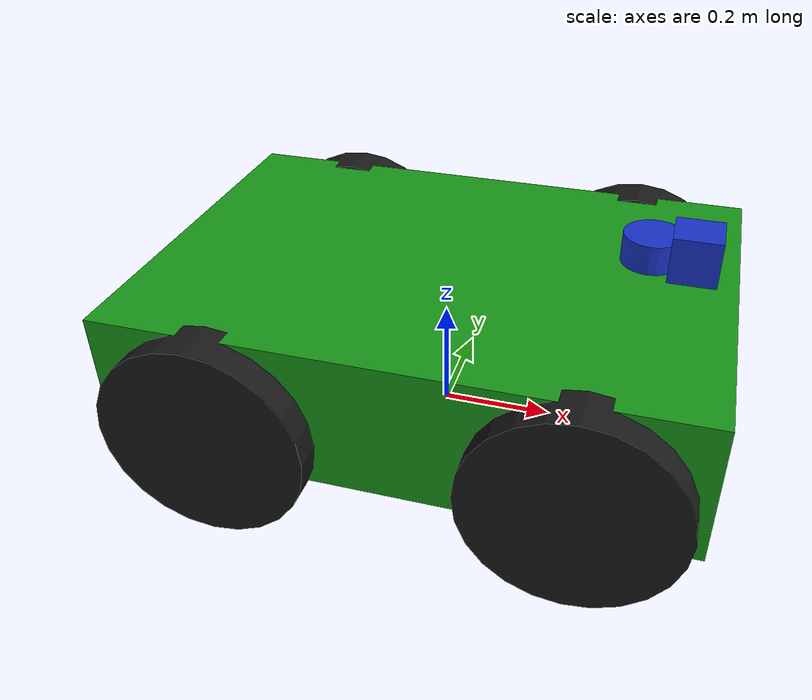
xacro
<?xml version="1.0"?>
<robot name="mini_tractor" xmlns:xacro="http://www.ros.org/wiki/xacro">

  <xacro:arg
    name="controllers_file"
    default="$(find tractor_description)/config/ros2_controllers.yaml"/>

  <xacro:include filename="$(find tractor_description)/urdf/tractor_properties.xacro"/>
  <xacro:include filename="$(find tractor_description)/urdf/tractor_core.xacro"/>
  <xacro:include filename="$(find tractor_description)/urdf/tractor_sensors.xacro"/>
  <xacro:include filename="$(find tractor_description)/urdf/tractor_ros2_control.xacro"/>
  <xacro:include filename="$(find tractor_description)/urdf/tractor_gazebo.xacro"/>

  <xacro:tractor_core/>
  <xacro:tractor_sensors/>
  <xacro:tractor_ros2_control/>
  <xacro:tractor_gazebo controllers_file="$(arg controllers_file)"/>

</robot>

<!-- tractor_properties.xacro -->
<robot xmlns:xacro="http://www.ros.org/wiki/xacro">

  <xacro:property name="base_length" value="1.00"/>
  <xacro:property name="base_width" value="0.70"/>
  <xacro:property name="base_height" value="0.25"/>

  <xacro:property name="wheel_radius" value="0.18"/>
  <xacro:property name="wheel_width" value="0.08"/>
  <xacro:property name="wheel_x_front" value="0.30"/>
  <xacro:property name="wheel_x_rear" value="-0.30"/>
  <xacro:property name="wheel_y" value="0.36"/>
  <xacro:property name="wheel_z" value="-0.05"/>
  <xacro:property name="wheel_separation" value="0.72"/>

  <xacro:property name="camera_size" value="0.08"/>

  <xacro:property name="lidar_radius" value="0.05"/>
  <xacro:property name="lidar_height" value="0.05"/>

  <material name="green">
    <color rgba="0.1 0.6 0.1 1.0"/>
  </material>

  <material name="black">
    <color rgba="0.1 0.1 0.1 1.0"/>
  </material>

  <material name="blue">
    <color rgba="0.1 0.2 0.8 1.0"/>
  </material>

</robot>

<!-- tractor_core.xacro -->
<robot xmlns:xacro="http://www.ros.org/wiki/xacro">

  <xacro:macro name="tractor_wheel" params="name x y">
    <link name="${name}">
      <visual>
        <origin xyz="0 0 0" rpy="1.5708 0 0"/>
        <geometry>
          <cylinder radius="${wheel_radius}" length="${wheel_width}"/>
        </geometry>
        <material name="black"/>
      </visual>

      <collision>
        <origin xyz="0 0 0" rpy="1.5708 0 0"/>
        <geometry>
          <cylinder radius="${wheel_radius}" length="${wheel_width}"/>
        </geometry>
      </collision>

      <inertial>
        <origin xyz="0 0 0" rpy="0 0 0"/>
        <mass value="2.0"/>
        <inertia
          ixx="0.02" ixy="0.0" ixz="0.0"
          iyy="0.02" iyz="0.0"
          izz="0.02"/>
      </inertial>
    </link>

    <joint name="${name}_joint" type="continuous">
      <parent link="base_link"/>
      <child link="${name}"/>
      <origin xyz="${x} ${y} ${wheel_z}" rpy="0 0 0"/>
      <axis xyz="0 1 0"/>
    </joint>
  </xacro:macro>

  <xacro:macro name="tractor_core">
    <link name="base_footprint"/>

    <joint name="base_footprint_joint" type="fixed">
      <parent link="base_footprint"/>
      <child link="base_link"/>
      <origin xyz="0 0 0.18" rpy="0 0 0"/>
    </joint>

    <link name="base_link">
      <visual>
        <origin xyz="0 0 0" rpy="0 0 0"/>
        <geometry>
          <box size="${base_length} ${base_width} ${base_height}"/>
        </geometry>
        <material name="green"/>
      </visual>

      <collision>
        <origin xyz="0 0 0" rpy="0 0 0"/>
        <geometry>
          <box size="${base_length} ${base_width} ${base_height}"/>
        </geometry>
      </collision>

      <inertial>
        <origin xyz="0 0 0" rpy="0 0 0"/>
        <mass value="40.0"/>
        <inertia
          ixx="3.0" ixy="0.0" ixz="0.0"
          iyy="3.0" iyz="0.0"
          izz="3.0"/>
      </inertial>
    </link>

    <xacro:tractor_wheel name="front_left_wheel" x="${wheel_x_front}" y="${wheel_y}"/>
    <xacro:tractor_wheel name="front_right_wheel" x="${wheel_x_front}" y="${-wheel_y}"/>
    <xacro:tractor_wheel name="rear_left_wheel" x="${wheel_x_rear}" y="${wheel_y}"/>
    <xacro:tractor_wheel name="rear_right_wheel" x="${wheel_x_rear}" y="${-wheel_y}"/>
  </xacro:macro>

</robot>

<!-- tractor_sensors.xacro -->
<robot xmlns:xacro="http://www.ros.org/wiki/xacro">

  <xacro:macro name="tractor_sensors">
    <link name="camera_link">
      <visual>
        <geometry>
          <box size="${camera_size} ${camera_size} ${camera_size}"/>
        </geometry>
        <material name="blue"/>
      </visual>

      <collision>
        <geometry>
          <box size="${camera_size} ${camera_size} ${camera_size}"/>
        </geometry>
      </collision>

      <inertial>
        <mass value="0.5"/>
        <inertia
          ixx="0.001" ixy="0.0" ixz="0.0"
          iyy="0.001" iyz="0.0"
          izz="0.001"/>
      </inertial>
    </link>

    <joint name="camera_joint" type="fixed">
      <parent link="base_link"/>
      <child link="camera_link"/>
      <origin xyz="0.42 0 0.20" rpy="0 0 0"/>
    </joint>

    <link name="lidar_link">
      <visual>
        <geometry>
          <cylinder radius="${lidar_radius}" length="${lidar_height}"/>
        </geometry>
        <material name="blue"/>
      </visual>

      <collision>
        <geometry>
          <cylinder radius="${lidar_radius}" length="${lidar_height}"/>
        </geometry>
      </collision>

      <inertial>
        <mass value="0.3"/>
        <inertia
          ixx="0.001" ixy="0.0" ixz="0.0"
          iyy="0.001" iyz="0.0"
          izz="0.001"/>
      </inertial>
    </link>

    <joint name="lidar_joint" type="fixed">
      <parent link="base_link"/>
      <child link="lidar_link"/>
      <origin xyz="0.35 0 0.20" rpy="0 0 0"/>
    </joint>
  </xacro:macro>

</robot>
